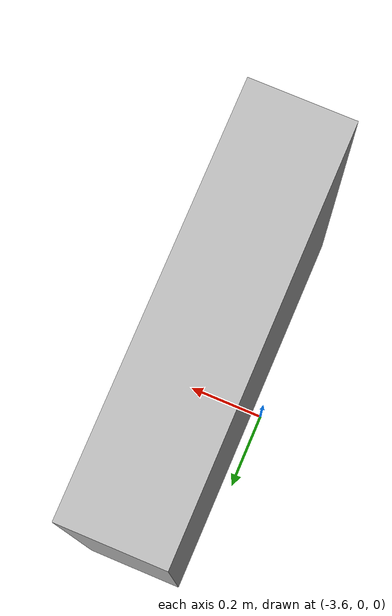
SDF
<?xml version='1.0'?>
<sdf version="1.5">
  <model name="apriltag_36h11_id2">
    <pose> -3 0 0.5 0 0 0</pose>
    <static>true</static>
    <link name="link">
      <collision name="collision">
	<pose>-0.5 0 0 0 0 0</pose>
        <geometry>
          <box>
            <size>1 1 1</size>
          </box>
        </geometry>
      </collision>
      <visual name='visual'>
        <pose>-0.5 0 0 0 0 0</pose>
        <geometry>
            <mesh>
              <uri>model://apriltag_36h11_id2/meshes/apriltag_36h11_id2.dae</uri>
            </mesh>
        </geometry>
      </visual>
    </link>
  </model>
</sdf>
